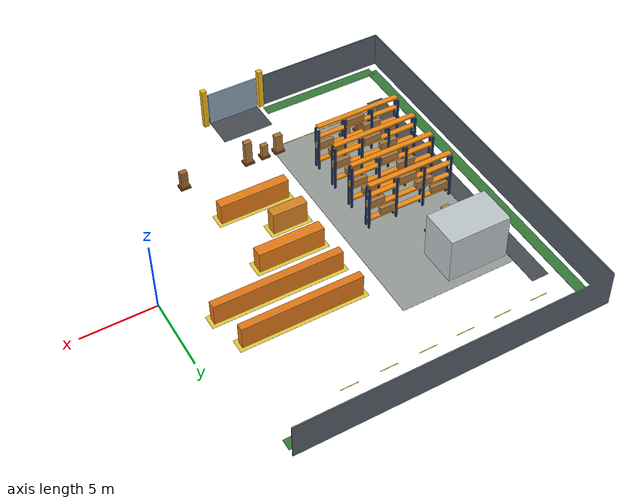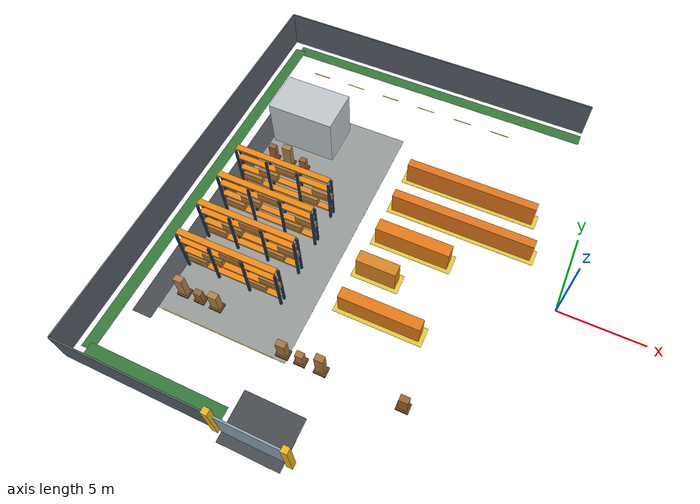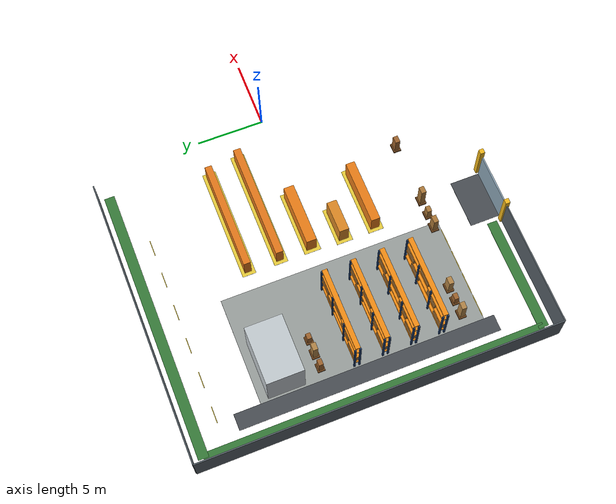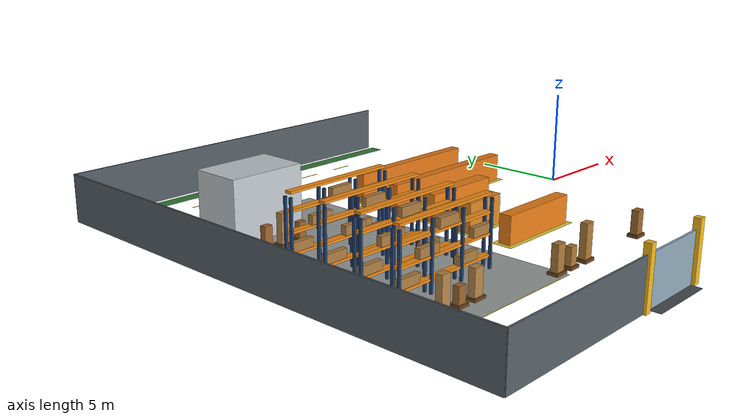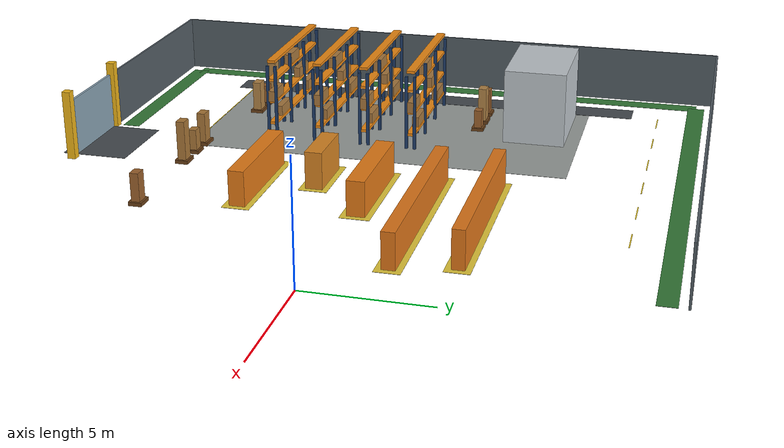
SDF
<sdf version="1.7">
 <world name="crtt_layout_demo">
  <include><uri>model://sun</uri></include>
  <model name="west_loading">
   <static>true</static>
   <pose>-16.8 -0.6 0.012 0 0 0</pose>
   <link name="marking">
    <visual name="visual">
     <geometry><box><size>9.0 16.5 0.012</size></box></geometry>
     <material><ambient>0.60 0.62 0.61 1</ambient><diffuse>0.60 0.62 0.61 1</diffuse></material>
    </visual>
   </link>
  </model>
  <model name="west_perimeter_path">
   <static>true</static>
   <pose>-20.849999999999998 0.0 0.025 0 0 0</pose>
   <link name="marking">
    <visual name="visual">
     <geometry><box><size>1.2 19.2 0.012</size></box></geometry>
     <material><ambient>0.28 0.30 0.32 1</ambient><diffuse>0.28 0.30 0.32 1</diffuse></material>
    </visual>
   </link>
  </model>
  <model name="green_north_west">
   <static>true</static>
   <pose>-12.075 12.45 0.036 0 0 0</pose>
   <link name="marking">
    <visual name="visual">
     <geometry><box><size>20.55 0.75 0.012</size></box></geometry>
     <material><ambient>0.21 0.48 0.22 1</ambient><diffuse>0.21 0.48 0.22 1</diffuse></material>
    </visual>
   </link>
  </model>
  <model name="green_west_edge">
   <static>true</static>
   <pose>-22.349999999999998 0.0 0.036 0 0 0</pose>
   <link name="marking">
    <visual name="visual">
     <geometry><box><size>0.75 24.9 0.012</size></box></geometry>
     <material><ambient>0.21 0.48 0.22 1</ambient><diffuse>0.21 0.48 0.22 1</diffuse></material>
    </visual>
   </link>
  </model>
  <model name="green_south_west">
   <static>true</static>
   <pose>-18.075 -12.45 0.036 0 0 0</pose>
   <link name="marking">
    <visual name="visual">
     <geometry><box><size>8.549999999999999 0.75 0.012</size></box></geometry>
     <material><ambient>0.21 0.48 0.22 1</ambient><diffuse>0.21 0.48 0.22 1</diffuse></material>
    </visual>
   </link>
  </model>
  <model name="south_loading_entry_road">
   <static>true</static>
   <pose>-11.7 -12.375 0.05 0 0 0</pose>
   <link name="marking">
    <visual name="visual">
     <geometry><box><size>3.5999999999999996 2.85 0.012</size></box></geometry>
     <material><ambient>0.28 0.30 0.32 1</ambient><diffuse>0.28 0.30 0.32 1</diffuse></material>
    </visual>
   </link>
  </model>
  <model name="north_fence_west">
   <static>true</static>
   <pose>-12.45 13.2 1.25 0 0 0</pose>
   <link name="link">
    <collision name="collision">
     <geometry><box><size>21.3 0.09 2.5</size></box></geometry>
     <surface><friction><ode><mu>0.9</mu><mu2>0.9</mu2></ode></friction></surface>
    </collision>
    <visual name="visual">
     <geometry><box><size>21.3 0.09 2.5</size></box></geometry>
     <material><ambient>0.33 0.37 0.40 1</ambient><diffuse>0.33 0.37 0.40 1</diffuse></material>
    </visual>
   </link>
  </model>
  <model name="south_fence_west">
   <static>true</static>
   <pose>-18.45 -13.2 1.25 0 0 0</pose>
   <link name="link">
    <collision name="collision">
     <geometry><box><size>9.299999999999999 0.09 2.5</size></box></geometry>
     <surface><friction><ode><mu>0.9</mu><mu2>0.9</mu2></ode></friction></surface>
    </collision>
    <visual name="visual">
     <geometry><box><size>9.299999999999999 0.09 2.5</size></box></geometry>
     <material><ambient>0.33 0.37 0.40 1</ambient><diffuse>0.33 0.37 0.40 1</diffuse></material>
    </visual>
   </link>
  </model>
  <model name="west_fence">
   <static>true</static>
   <pose>-23.099999999999998 0.0 1.25 0 0 0</pose>
   <link name="link">
    <collision name="collision">
     <geometry><box><size>0.09 26.4 2.5</size></box></geometry>
     <surface><friction><ode><mu>0.9</mu><mu2>0.9</mu2></ode></friction></surface>
    </collision>
    <visual name="visual">
     <geometry><box><size>0.09 26.4 2.5</size></box></geometry>
     <material><ambient>0.33 0.37 0.40 1</ambient><diffuse>0.33 0.37 0.40 1</diffuse></material>
    </visual>
   </link>
  </model>
  <model name="loading_office">
   <static>true</static>
   <pose>-18.0 5.7 1.65 0 0 0</pose>
   <link name="link">
    <collision name="collision">
     <geometry><box><size>4.2 2.6999999999999997 3.3</size></box></geometry>
     <surface><friction><ode><mu>0.9</mu><mu2>0.9</mu2></ode></friction></surface>
    </collision>
    <visual name="visual">
     <geometry><box><size>4.2 2.6999999999999997 3.3</size></box></geometry>
     <material><ambient>0.76 0.79 0.81 1</ambient><diffuse>0.76 0.79 0.81 1</diffuse></material>
    </visual>
   </link>
  </model>
  <model name="west_rack_1">
   <static>true</static>
   <pose>-17.099999999999998 -5.7 0 0 0 0</pose>
   <link name="rack">
    <collision name="rack_footprint">
     <pose>0 0 1.65 0 0 0</pose>
     <geometry><box><size>6.0 0.36 3.3</size></box></geometry>
    </collision>
    <visual name="upright_0_0">
     <pose>-3.0 -0.18 1.65 0 0 0</pose>
     <geometry><box><size>0.12 0.12 3.3</size></box></geometry>
     <material><ambient>0.12 0.24 0.42 1</ambient><diffuse>0.12 0.24 0.42 1</diffuse></material>
    </visual>
    <visual name="upright_0_1">
     <pose>-3.0 0.18 1.65 0 0 0</pose>
     <geometry><box><size>0.12 0.12 3.3</size></box></geometry>
     <material><ambient>0.12 0.24 0.42 1</ambient><diffuse>0.12 0.24 0.42 1</diffuse></material>
    </visual>
    <visual name="upright_1_0">
     <pose>-1.0 -0.18 1.65 0 0 0</pose>
     <geometry><box><size>0.12 0.12 3.3</size></box></geometry>
     <material><ambient>0.12 0.24 0.42 1</ambient><diffuse>0.12 0.24 0.42 1</diffuse></material>
    </visual>
    <visual name="upright_1_1">
     <pose>-1.0 0.18 1.65 0 0 0</pose>
     <geometry><box><size>0.12 0.12 3.3</size></box></geometry>
     <material><ambient>0.12 0.24 0.42 1</ambient><diffuse>0.12 0.24 0.42 1</diffuse></material>
    </visual>
    <visual name="upright_2_0">
     <pose>1.0 -0.18 1.65 0 0 0</pose>
     <geometry><box><size>0.12 0.12 3.3</size></box></geometry>
     <material><ambient>0.12 0.24 0.42 1</ambient><diffuse>0.12 0.24 0.42 1</diffuse></material>
    </visual>
    <visual name="upright_2_1">
     <pose>1.0 0.18 1.65 0 0 0</pose>
     <geometry><box><size>0.12 0.12 3.3</size></box></geometry>
     <material><ambient>0.12 0.24 0.42 1</ambient><diffuse>0.12 0.24 0.42 1</diffuse></material>
    </visual>
    <visual name="upright_3_0">
     <pose>3.0 -0.18 1.65 0 0 0</pose>
     <geometry><box><size>0.12 0.12 3.3</size></box></geometry>
     <material><ambient>0.12 0.24 0.42 1</ambient><diffuse>0.12 0.24 0.42 1</diffuse></material>
    </visual>
    <visual name="upright_3_1">
     <pose>3.0 0.18 1.65 0 0 0</pose>
     <geometry><box><size>0.12 0.12 3.3</size></box></geometry>
     <material><ambient>0.12 0.24 0.42 1</ambient><diffuse>0.12 0.24 0.42 1</diffuse></material>
    </visual>
    <visual name="beam_0">
     <pose>0 0 0.65 0 0 0</pose>
     <geometry><box><size>6.0 0.36 0.12</size></box></geometry>
     <material><ambient>0.95 0.55 0.08 1</ambient><diffuse>0.95 0.55 0.08 1</diffuse></material>
    </visual>
    <visual name="beam_1">
     <pose>0 0 1.65 0 0 0</pose>
     <geometry><box><size>6.0 0.36 0.12</size></box></geometry>
     <material><ambient>0.95 0.55 0.08 1</ambient><diffuse>0.95 0.55 0.08 1</diffuse></material>
    </visual>
    <visual name="beam_2">
     <pose>0 0 2.65 0 0 0</pose>
     <geometry><box><size>6.0 0.36 0.12</size></box></geometry>
     <material><ambient>0.95 0.55 0.08 1</ambient><diffuse>0.95 0.55 0.08 1</diffuse></material>
    </visual>
    <visual name="beam_3">
     <pose>0 0 3.5 0 0 0</pose>
     <geometry><box><size>6.0 0.36 0.12</size></box></geometry>
     <material><ambient>0.95 0.55 0.08 1</ambient><diffuse>0.95 0.55 0.08 1</diffuse></material>
    </visual>
    <visual name="load_0">
     <pose>-2.2800000000000002 0 0.92 0 0 0</pose>
     <geometry><box><size>1.25 0.2808 0.48</size></box></geometry>
     <material><ambient>0.67 0.48 0.25 1</ambient><diffuse>0.67 0.48 0.25 1</diffuse></material>
    </visual>
    <visual name="load_1">
     <pose>-1.08 0 1.92 0 0 0</pose>
     <geometry><box><size>1.25 0.2808 0.48</size></box></geometry>
     <material><ambient>0.67 0.48 0.25 1</ambient><diffuse>0.67 0.48 0.25 1</diffuse></material>
    </visual>
    <visual name="load_2">
     <pose>0.18 0 2.92 0 0 0</pose>
     <geometry><box><size>1.25 0.2808 0.48</size></box></geometry>
     <material><ambient>0.67 0.48 0.25 1</ambient><diffuse>0.67 0.48 0.25 1</diffuse></material>
    </visual>
    <visual name="load_3">
     <pose>1.5 0 0.92 0 0 0</pose>
     <geometry><box><size>1.25 0.2808 0.48</size></box></geometry>
     <material><ambient>0.67 0.48 0.25 1</ambient><diffuse>0.67 0.48 0.25 1</diffuse></material>
    </visual>
    <visual name="load_4">
     <pose>2.46 0 1.92 0 0 0</pose>
     <geometry><box><size>1.25 0.2808 0.48</size></box></geometry>
     <material><ambient>0.67 0.48 0.25 1</ambient><diffuse>0.67 0.48 0.25 1</diffuse></material>
    </visual>
   </link>
  </model>
  <model name="west_rack_2">
   <static>true</static>
   <pose>-17.099999999999998 -3.5999999999999996 0 0 0 0</pose>
   <link name="rack">
    <collision name="rack_footprint">
     <pose>0 0 1.65 0 0 0</pose>
     <geometry><box><size>6.0 0.36 3.3</size></box></geometry>
    </collision>
    <visual name="upright_0_0">
     <pose>-3.0 -0.18 1.65 0 0 0</pose>
     <geometry><box><size>0.12 0.12 3.3</size></box></geometry>
     <material><ambient>0.12 0.24 0.42 1</ambient><diffuse>0.12 0.24 0.42 1</diffuse></material>
    </visual>
    <visual name="upright_0_1">
     <pose>-3.0 0.18 1.65 0 0 0</pose>
     <geometry><box><size>0.12 0.12 3.3</size></box></geometry>
     <material><ambient>0.12 0.24 0.42 1</ambient><diffuse>0.12 0.24 0.42 1</diffuse></material>
    </visual>
    <visual name="upright_1_0">
     <pose>-1.0 -0.18 1.65 0 0 0</pose>
     <geometry><box><size>0.12 0.12 3.3</size></box></geometry>
     <material><ambient>0.12 0.24 0.42 1</ambient><diffuse>0.12 0.24 0.42 1</diffuse></material>
    </visual>
    <visual name="upright_1_1">
     <pose>-1.0 0.18 1.65 0 0 0</pose>
     <geometry><box><size>0.12 0.12 3.3</size></box></geometry>
     <material><ambient>0.12 0.24 0.42 1</ambient><diffuse>0.12 0.24 0.42 1</diffuse></material>
    </visual>
    <visual name="upright_2_0">
     <pose>1.0 -0.18 1.65 0 0 0</pose>
     <geometry><box><size>0.12 0.12 3.3</size></box></geometry>
     <material><ambient>0.12 0.24 0.42 1</ambient><diffuse>0.12 0.24 0.42 1</diffuse></material>
    </visual>
    <visual name="upright_2_1">
     <pose>1.0 0.18 1.65 0 0 0</pose>
     <geometry><box><size>0.12 0.12 3.3</size></box></geometry>
     <material><ambient>0.12 0.24 0.42 1</ambient><diffuse>0.12 0.24 0.42 1</diffuse></material>
    </visual>
    <visual name="upright_3_0">
     <pose>3.0 -0.18 1.65 0 0 0</pose>
     <geometry><box><size>0.12 0.12 3.3</size></box></geometry>
     <material><ambient>0.12 0.24 0.42 1</ambient><diffuse>0.12 0.24 0.42 1</diffuse></material>
    </visual>
    <visual name="upright_3_1">
     <pose>3.0 0.18 1.65 0 0 0</pose>
     <geometry><box><size>0.12 0.12 3.3</size></box></geometry>
     <material><ambient>0.12 0.24 0.42 1</ambient><diffuse>0.12 0.24 0.42 1</diffuse></material>
    </visual>
    <visual name="beam_0">
     <pose>0 0 0.65 0 0 0</pose>
     <geometry><box><size>6.0 0.36 0.12</size></box></geometry>
     <material><ambient>0.95 0.55 0.08 1</ambient><diffuse>0.95 0.55 0.08 1</diffuse></material>
    </visual>
    <visual name="beam_1">
     <pose>0 0 1.65 0 0 0</pose>
     <geometry><box><size>6.0 0.36 0.12</size></box></geometry>
     <material><ambient>0.95 0.55 0.08 1</ambient><diffuse>0.95 0.55 0.08 1</diffuse></material>
    </visual>
    <visual name="beam_2">
     <pose>0 0 2.65 0 0 0</pose>
     <geometry><box><size>6.0 0.36 0.12</size></box></geometry>
     <material><ambient>0.95 0.55 0.08 1</ambient><diffuse>0.95 0.55 0.08 1</diffuse></material>
    </visual>
    <visual name="beam_3">
     <pose>0 0 3.5 0 0 0</pose>
     <geometry><box><size>6.0 0.36 0.12</size></box></geometry>
     <material><ambient>0.95 0.55 0.08 1</ambient><diffuse>0.95 0.55 0.08 1</diffuse></material>
    </visual>
    <visual name="load_0">
     <pose>-2.2800000000000002 0 0.92 0 0 0</pose>
     <geometry><box><size>1.25 0.2808 0.48</size></box></geometry>
     <material><ambient>0.67 0.48 0.25 1</ambient><diffuse>0.67 0.48 0.25 1</diffuse></material>
    </visual>
    <visual name="load_1">
     <pose>-1.08 0 1.92 0 0 0</pose>
     <geometry><box><size>1.25 0.2808 0.48</size></box></geometry>
     <material><ambient>0.67 0.48 0.25 1</ambient><diffuse>0.67 0.48 0.25 1</diffuse></material>
    </visual>
    <visual name="load_2">
     <pose>0.18 0 2.92 0 0 0</pose>
     <geometry><box><size>1.25 0.2808 0.48</size></box></geometry>
     <material><ambient>0.67 0.48 0.25 1</ambient><diffuse>0.67 0.48 0.25 1</diffuse></material>
    </visual>
    <visual name="load_3">
     <pose>1.5 0 0.92 0 0 0</pose>
     <geometry><box><size>1.25 0.2808 0.48</size></box></geometry>
     <material><ambient>0.67 0.48 0.25 1</ambient><diffuse>0.67 0.48 0.25 1</diffuse></material>
    </visual>
    <visual name="load_4">
     <pose>2.46 0 1.92 0 0 0</pose>
     <geometry><box><size>1.25 0.2808 0.48</size></box></geometry>
     <material><ambient>0.67 0.48 0.25 1</ambient><diffuse>0.67 0.48 0.25 1</diffuse></material>
    </visual>
   </link>
  </model>
  <model name="west_rack_3">
   <static>true</static>
   <pose>-17.099999999999998 -1.5 0 0 0 0</pose>
   <link name="rack">
    <collision name="rack_footprint">
     <pose>0 0 1.65 0 0 0</pose>
     <geometry><box><size>6.0 0.36 3.3</size></box></geometry>
    </collision>
    <visual name="upright_0_0">
     <pose>-3.0 -0.18 1.65 0 0 0</pose>
     <geometry><box><size>0.12 0.12 3.3</size></box></geometry>
     <material><ambient>0.12 0.24 0.42 1</ambient><diffuse>0.12 0.24 0.42 1</diffuse></material>
    </visual>
    <visual name="upright_0_1">
     <pose>-3.0 0.18 1.65 0 0 0</pose>
     <geometry><box><size>0.12 0.12 3.3</size></box></geometry>
     <material><ambient>0.12 0.24 0.42 1</ambient><diffuse>0.12 0.24 0.42 1</diffuse></material>
    </visual>
    <visual name="upright_1_0">
     <pose>-1.0 -0.18 1.65 0 0 0</pose>
     <geometry><box><size>0.12 0.12 3.3</size></box></geometry>
     <material><ambient>0.12 0.24 0.42 1</ambient><diffuse>0.12 0.24 0.42 1</diffuse></material>
    </visual>
    <visual name="upright_1_1">
     <pose>-1.0 0.18 1.65 0 0 0</pose>
     <geometry><box><size>0.12 0.12 3.3</size></box></geometry>
     <material><ambient>0.12 0.24 0.42 1</ambient><diffuse>0.12 0.24 0.42 1</diffuse></material>
    </visual>
    <visual name="upright_2_0">
     <pose>1.0 -0.18 1.65 0 0 0</pose>
     <geometry><box><size>0.12 0.12 3.3</size></box></geometry>
     <material><ambient>0.12 0.24 0.42 1</ambient><diffuse>0.12 0.24 0.42 1</diffuse></material>
    </visual>
    <visual name="upright_2_1">
     <pose>1.0 0.18 1.65 0 0 0</pose>
     <geometry><box><size>0.12 0.12 3.3</size></box></geometry>
     <material><ambient>0.12 0.24 0.42 1</ambient><diffuse>0.12 0.24 0.42 1</diffuse></material>
    </visual>
    <visual name="upright_3_0">
     <pose>3.0 -0.18 1.65 0 0 0</pose>
     <geometry><box><size>0.12 0.12 3.3</size></box></geometry>
     <material><ambient>0.12 0.24 0.42 1</ambient><diffuse>0.12 0.24 0.42 1</diffuse></material>
    </visual>
    <visual name="upright_3_1">
     <pose>3.0 0.18 1.65 0 0 0</pose>
     <geometry><box><size>0.12 0.12 3.3</size></box></geometry>
     <material><ambient>0.12 0.24 0.42 1</ambient><diffuse>0.12 0.24 0.42 1</diffuse></material>
    </visual>
    <visual name="beam_0">
     <pose>0 0 0.65 0 0 0</pose>
     <geometry><box><size>6.0 0.36 0.12</size></box></geometry>
     <material><ambient>0.95 0.55 0.08 1</ambient><diffuse>0.95 0.55 0.08 1</diffuse></material>
    </visual>
    <visual name="beam_1">
     <pose>0 0 1.65 0 0 0</pose>
     <geometry><box><size>6.0 0.36 0.12</size></box></geometry>
     <material><ambient>0.95 0.55 0.08 1</ambient><diffuse>0.95 0.55 0.08 1</diffuse></material>
    </visual>
    <visual name="beam_2">
     <pose>0 0 2.65 0 0 0</pose>
     <geometry><box><size>6.0 0.36 0.12</size></box></geometry>
     <material><ambient>0.95 0.55 0.08 1</ambient><diffuse>0.95 0.55 0.08 1</diffuse></material>
    </visual>
    <visual name="beam_3">
     <pose>0 0 3.5 0 0 0</pose>
     <geometry><box><size>6.0 0.36 0.12</size></box></geometry>
     <material><ambient>0.95 0.55 0.08 1</ambient><diffuse>0.95 0.55 0.08 1</diffuse></material>
    </visual>
    <visual name="load_0">
     <pose>-2.2800000000000002 0 0.92 0 0 0</pose>
     <geometry><box><size>1.25 0.2808 0.48</size></box></geometry>
     <material><ambient>0.67 0.48 0.25 1</ambient><diffuse>0.67 0.48 0.25 1</diffuse></material>
    </visual>
    <visual name="load_1">
     <pose>-1.08 0 1.92 0 0 0</pose>
     <geometry><box><size>1.25 0.2808 0.48</size></box></geometry>
     <material><ambient>0.67 0.48 0.25 1</ambient><diffuse>0.67 0.48 0.25 1</diffuse></material>
    </visual>
    <visual name="load_2">
     <pose>0.18 0 2.92 0 0 0</pose>
     <geometry><box><size>1.25 0.2808 0.48</size></box></geometry>
     <material><ambient>0.67 0.48 0.25 1</ambient><diffuse>0.67 0.48 0.25 1</diffuse></material>
    </visual>
    <visual name="load_3">
     <pose>1.5 0 0.92 0 0 0</pose>
     <geometry><box><size>1.25 0.2808 0.48</size></box></geometry>
     <material><ambient>0.67 0.48 0.25 1</ambient><diffuse>0.67 0.48 0.25 1</diffuse></material>
    </visual>
    <visual name="load_4">
     <pose>2.46 0 1.92 0 0 0</pose>
     <geometry><box><size>1.25 0.2808 0.48</size></box></geometry>
     <material><ambient>0.67 0.48 0.25 1</ambient><diffuse>0.67 0.48 0.25 1</diffuse></material>
    </visual>
   </link>
  </model>
  <model name="west_rack_4">
   <static>true</static>
   <pose>-17.099999999999998 0.6 0 0 0 0</pose>
   <link name="rack">
    <collision name="rack_footprint">
     <pose>0 0 1.65 0 0 0</pose>
     <geometry><box><size>6.0 0.36 3.3</size></box></geometry>
    </collision>
    <visual name="upright_0_0">
     <pose>-3.0 -0.18 1.65 0 0 0</pose>
     <geometry><box><size>0.12 0.12 3.3</size></box></geometry>
     <material><ambient>0.12 0.24 0.42 1</ambient><diffuse>0.12 0.24 0.42 1</diffuse></material>
    </visual>
    <visual name="upright_0_1">
     <pose>-3.0 0.18 1.65 0 0 0</pose>
     <geometry><box><size>0.12 0.12 3.3</size></box></geometry>
     <material><ambient>0.12 0.24 0.42 1</ambient><diffuse>0.12 0.24 0.42 1</diffuse></material>
    </visual>
    <visual name="upright_1_0">
     <pose>-1.0 -0.18 1.65 0 0 0</pose>
     <geometry><box><size>0.12 0.12 3.3</size></box></geometry>
     <material><ambient>0.12 0.24 0.42 1</ambient><diffuse>0.12 0.24 0.42 1</diffuse></material>
    </visual>
    <visual name="upright_1_1">
     <pose>-1.0 0.18 1.65 0 0 0</pose>
     <geometry><box><size>0.12 0.12 3.3</size></box></geometry>
     <material><ambient>0.12 0.24 0.42 1</ambient><diffuse>0.12 0.24 0.42 1</diffuse></material>
    </visual>
    <visual name="upright_2_0">
     <pose>1.0 -0.18 1.65 0 0 0</pose>
     <geometry><box><size>0.12 0.12 3.3</size></box></geometry>
     <material><ambient>0.12 0.24 0.42 1</ambient><diffuse>0.12 0.24 0.42 1</diffuse></material>
    </visual>
    <visual name="upright_2_1">
     <pose>1.0 0.18 1.65 0 0 0</pose>
     <geometry><box><size>0.12 0.12 3.3</size></box></geometry>
     <material><ambient>0.12 0.24 0.42 1</ambient><diffuse>0.12 0.24 0.42 1</diffuse></material>
    </visual>
    <visual name="upright_3_0">
     <pose>3.0 -0.18 1.65 0 0 0</pose>
     <geometry><box><size>0.12 0.12 3.3</size></box></geometry>
     <material><ambient>0.12 0.24 0.42 1</ambient><diffuse>0.12 0.24 0.42 1</diffuse></material>
    </visual>
    <visual name="upright_3_1">
     <pose>3.0 0.18 1.65 0 0 0</pose>
     <geometry><box><size>0.12 0.12 3.3</size></box></geometry>
     <material><ambient>0.12 0.24 0.42 1</ambient><diffuse>0.12 0.24 0.42 1</diffuse></material>
    </visual>
    <visual name="beam_0">
     <pose>0 0 0.65 0 0 0</pose>
     <geometry><box><size>6.0 0.36 0.12</size></box></geometry>
     <material><ambient>0.95 0.55 0.08 1</ambient><diffuse>0.95 0.55 0.08 1</diffuse></material>
    </visual>
    <visual name="beam_1">
     <pose>0 0 1.65 0 0 0</pose>
     <geometry><box><size>6.0 0.36 0.12</size></box></geometry>
     <material><ambient>0.95 0.55 0.08 1</ambient><diffuse>0.95 0.55 0.08 1</diffuse></material>
    </visual>
    <visual name="beam_2">
     <pose>0 0 2.65 0 0 0</pose>
     <geometry><box><size>6.0 0.36 0.12</size></box></geometry>
     <material><ambient>0.95 0.55 0.08 1</ambient><diffuse>0.95 0.55 0.08 1</diffuse></material>
    </visual>
    <visual name="beam_3">
     <pose>0 0 3.5 0 0 0</pose>
     <geometry><box><size>6.0 0.36 0.12</size></box></geometry>
     <material><ambient>0.95 0.55 0.08 1</ambient><diffuse>0.95 0.55 0.08 1</diffuse></material>
    </visual>
    <visual name="load_0">
     <pose>-2.2800000000000002 0 0.92 0 0 0</pose>
     <geometry><box><size>1.25 0.2808 0.48</size></box></geometry>
     <material><ambient>0.67 0.48 0.25 1</ambient><diffuse>0.67 0.48 0.25 1</diffuse></material>
    </visual>
    <visual name="load_1">
     <pose>-1.08 0 1.92 0 0 0</pose>
     <geometry><box><size>1.25 0.2808 0.48</size></box></geometry>
     <material><ambient>0.67 0.48 0.25 1</ambient><diffuse>0.67 0.48 0.25 1</diffuse></material>
    </visual>
    <visual name="load_2">
     <pose>0.18 0 2.92 0 0 0</pose>
     <geometry><box><size>1.25 0.2808 0.48</size></box></geometry>
     <material><ambient>0.67 0.48 0.25 1</ambient><diffuse>0.67 0.48 0.25 1</diffuse></material>
    </visual>
    <visual name="load_3">
     <pose>1.5 0 0.92 0 0 0</pose>
     <geometry><box><size>1.25 0.2808 0.48</size></box></geometry>
     <material><ambient>0.67 0.48 0.25 1</ambient><diffuse>0.67 0.48 0.25 1</diffuse></material>
    </visual>
    <visual name="load_4">
     <pose>2.46 0 1.92 0 0 0</pose>
     <geometry><box><size>1.25 0.2808 0.48</size></box></geometry>
     <material><ambient>0.67 0.48 0.25 1</ambient><diffuse>0.67 0.48 0.25 1</diffuse></material>
    </visual>
   </link>
  </model>
  <model name="south_gate_west_post">
   <static>true</static>
   <pose>-13.799999999999999 -13.2 1.5 0 0 0</pose>
   <link name="link">
    <collision name="collision">
     <geometry><box><size>0.35 0.35 3.0</size></box></geometry>
     <surface><friction><ode><mu>0.9</mu><mu2>0.9</mu2></ode></friction></surface>
    </collision>
    <visual name="visual">
     <geometry><box><size>0.35 0.35 3.0</size></box></geometry>
     <material><ambient>0.95 0.72 0.10 1</ambient><diffuse>0.95 0.72 0.10 1</diffuse></material>
    </visual>
   </link>
  </model>
  <model name="south_gate_east_post">
   <static>true</static>
   <pose>-9.6 -13.2 1.5 0 0 0</pose>
   <link name="link">
    <collision name="collision">
     <geometry><box><size>0.35 0.35 3.0</size></box></geometry>
     <surface><friction><ode><mu>0.9</mu><mu2>0.9</mu2></ode></friction></surface>
    </collision>
    <visual name="visual">
     <geometry><box><size>0.35 0.35 3.0</size></box></geometry>
     <material><ambient>0.95 0.72 0.10 1</ambient><diffuse>0.95 0.72 0.10 1</diffuse></material>
    </visual>
   </link>
  </model>
  <model name="crtt_south_gate">
   <static>false</static>
   <pose>-11.7 -13.2 1.25 0 0 0</pose>
   <link name="panel">
    <kinematic>true</kinematic>
    <gravity>false</gravity>
    <inertial>
     <mass>100.0</mass>
     <inertia><ixx>100.0</ixx><iyy>100.0</iyy><izz>100.0</izz><ixy>0</ixy><ixz>0</ixz><iyz>0</iyz></inertia>
    </inertial>
    <collision name="collision">
     <geometry><box><size>3.5999999999999996 0.105 2.5</size></box></geometry>
    </collision>
    <visual name="visual">
     <geometry><box><size>3.5999999999999996 0.105 2.5</size></box></geometry>
     <material><ambient>0.55 0.65 0.72 1</ambient><diffuse>0.55 0.65 0.72 1</diffuse></material>
    </visual>
   </link>
  </model>
  <model name="process_long_a_pad">
   <static>true</static>
   <pose>-6.8999999999999995 5.1 0.012 0 0 0</pose>
   <link name="marking">
    <visual name="visual">
     <geometry><box><size>8.58 0.9899999999999999 0.012</size></box></geometry>
     <material><ambient>0.91 0.80 0.23 1</ambient><diffuse>0.91 0.80 0.23 1</diffuse></material>
    </visual>
   </link>
  </model>
  <model name="process_long_a">
   <static>true</static>
   <pose>-6.8999999999999995 5.1 0.8 0 0 0</pose>
   <link name="link">
    <collision name="collision">
     <geometry><box><size>8.1 0.51 1.6</size></box></geometry>
     <surface><friction><ode><mu>0.9</mu><mu2>0.9</mu2></ode></friction></surface>
    </collision>
    <visual name="visual">
     <geometry><box><size>8.1 0.51 1.6</size></box></geometry>
     <material><ambient>0.89 0.47 0.10 1</ambient><diffuse>0.89 0.47 0.10 1</diffuse></material>
    </visual>
   </link>
  </model>
  <model name="process_long_b_pad">
   <static>true</static>
   <pose>-6.6 2.6999999999999997 0.012 0 0 0</pose>
   <link name="marking">
    <visual name="visual">
     <geometry><box><size>9.18 1.02 0.012</size></box></geometry>
     <material><ambient>0.91 0.80 0.23 1</ambient><diffuse>0.91 0.80 0.23 1</diffuse></material>
    </visual>
   </link>
  </model>
  <model name="process_long_b">
   <static>true</static>
   <pose>-6.6 2.6999999999999997 0.75 0 0 0</pose>
   <link name="link">
    <collision name="collision">
     <geometry><box><size>8.7 0.54 1.5</size></box></geometry>
     <surface><friction><ode><mu>0.9</mu><mu2>0.9</mu2></ode></friction></surface>
    </collision>
    <visual name="visual">
     <geometry><box><size>8.7 0.54 1.5</size></box></geometry>
     <material><ambient>0.89 0.47 0.10 1</ambient><diffuse>0.89 0.47 0.10 1</diffuse></material>
    </visual>
   </link>
  </model>
  <model name="process_medium_b_pad">
   <static>true</static>
   <pose>-8.7 0.3 0.012 0 0 0</pose>
   <link name="marking">
    <visual name="visual">
     <geometry><box><size>4.98 1.2299999999999998 0.012</size></box></geometry>
     <material><ambient>0.91 0.80 0.23 1</ambient><diffuse>0.91 0.80 0.23 1</diffuse></material>
    </visual>
   </link>
  </model>
  <model name="process_medium_b">
   <static>true</static>
   <pose>-8.7 0.3 0.75 0 0 0</pose>
   <link name="link">
    <collision name="collision">
     <geometry><box><size>4.5 0.75 1.5</size></box></geometry>
     <surface><friction><ode><mu>0.9</mu><mu2>0.9</mu2></ode></friction></surface>
    </collision>
    <visual name="visual">
     <geometry><box><size>4.5 0.75 1.5</size></box></geometry>
     <material><ambient>0.91 0.49 0.09 1</ambient><diffuse>0.91 0.49 0.09 1</diffuse></material>
    </visual>
   </link>
  </model>
  <model name="process_short_b_pad">
   <static>true</static>
   <pose>-9.9 -2.1 0.012 0 0 0</pose>
   <link name="marking">
    <visual name="visual">
     <geometry><box><size>2.88 1.2 0.012</size></box></geometry>
     <material><ambient>0.91 0.80 0.23 1</ambient><diffuse>0.91 0.80 0.23 1</diffuse></material>
    </visual>
   </link>
  </model>
  <model name="process_short_b">
   <static>true</static>
   <pose>-9.9 -2.1 0.8 0 0 0</pose>
   <link name="link">
    <collision name="collision">
     <geometry><box><size>2.4 0.72 1.6</size></box></geometry>
     <surface><friction><ode><mu>0.9</mu><mu2>0.9</mu2></ode></friction></surface>
    </collision>
    <visual name="visual">
     <geometry><box><size>2.4 0.72 1.6</size></box></geometry>
     <material><ambient>0.86 0.53 0.14 1</ambient><diffuse>0.86 0.53 0.14 1</diffuse></material>
    </visual>
   </link>
  </model>
  <model name="process_medium_c_pad">
   <static>true</static>
   <pose>-8.7 -4.5 0.012 0 0 0</pose>
   <link name="marking">
    <visual name="visual">
     <geometry><box><size>5.28 1.1400000000000001 0.012</size></box></geometry>
     <material><ambient>0.91 0.80 0.23 1</ambient><diffuse>0.91 0.80 0.23 1</diffuse></material>
    </visual>
   </link>
  </model>
  <model name="process_medium_c">
   <static>true</static>
   <pose>-8.7 -4.5 0.75 0 0 0</pose>
   <link name="link">
    <collision name="collision">
     <geometry><box><size>4.8 0.66 1.5</size></box></geometry>
     <surface><friction><ode><mu>0.9</mu><mu2>0.9</mu2></ode></friction></surface>
    </collision>
    <visual name="visual">
     <geometry><box><size>4.8 0.66 1.5</size></box></geometry>
     <material><ambient>0.91 0.49 0.09 1</ambient><diffuse>0.91 0.49 0.09 1</diffuse></material>
    </visual>
   </link>
  </model>
  <model name="floor_load_1">
   <static>true</static>
   <pose>-19.349999999999998 3.0 0 0 0 0</pose>
   <link name="load">
    <collision name="collision">
     <pose>0 0 0.63 0 0 0</pose>
     <geometry><box><size>0.6499999999999999 0.53 1.26</size></box></geometry>
    </collision>
    <visual name="wood_pallet">
     <pose>0 0 0.08 0 0 0</pose>
     <geometry><box><size>0.6499999999999999 0.53 0.16</size></box></geometry>
     <material><ambient>0.43 0.26 0.10 1</ambient><diffuse>0.43 0.26 0.10 1</diffuse></material>
    </visual>
    <visual name="cargo">
     <pose>0 0 0.7100000000000001 0 0 0</pose>
     <geometry><box><size>0.44999999999999996 0.33 1.1</size></box></geometry>
     <material><ambient>0.62 0.39 0.18 1</ambient><diffuse>0.62 0.39 0.18 1</diffuse></material>
    </visual>
   </link>
  </model>
  <model name="floor_load_2">
   <static>true</static>
   <pose>-18.3 3.0 0 0 0 0</pose>
   <link name="load">
    <collision name="collision">
     <pose>0 0 0.83 0 0 0</pose>
     <geometry><box><size>0.74 0.56 1.66</size></box></geometry>
    </collision>
    <visual name="wood_pallet">
     <pose>0 0 0.08 0 0 0</pose>
     <geometry><box><size>0.74 0.56 0.16</size></box></geometry>
     <material><ambient>0.43 0.26 0.10 1</ambient><diffuse>0.43 0.26 0.10 1</diffuse></material>
    </visual>
    <visual name="cargo">
     <pose>0 0 0.91 0 0 0</pose>
     <geometry><box><size>0.54 0.36 1.5</size></box></geometry>
     <material><ambient>0.70 0.52 0.28 1</ambient><diffuse>0.70 0.52 0.28 1</diffuse></material>
    </visual>
   </link>
  </model>
  <model name="floor_load_3">
   <static>true</static>
   <pose>-17.25 3.0 0 0 0 0</pose>
   <link name="load">
    <collision name="collision">
     <pose>0 0 0.48000000000000004 0 0 0</pose>
     <geometry><box><size>0.62 0.53 0.9600000000000001</size></box></geometry>
    </collision>
    <visual name="wood_pallet">
     <pose>0 0 0.08 0 0 0</pose>
     <geometry><box><size>0.62 0.53 0.16</size></box></geometry>
     <material><ambient>0.43 0.26 0.10 1</ambient><diffuse>0.43 0.26 0.10 1</diffuse></material>
    </visual>
    <visual name="cargo">
     <pose>0 0 0.56 0 0 0</pose>
     <geometry><box><size>0.42 0.33 0.8</size></box></geometry>
     <material><ambient>0.62 0.39 0.18 1</ambient><diffuse>0.62 0.39 0.18 1</diffuse></material>
    </visual>
   </link>
  </model>
  <model name="floor_load_4">
   <static>true</static>
   <pose>-19.349999999999998 -7.5 0 0 0 0</pose>
   <link name="load">
    <collision name="collision">
     <pose>0 0 0.88 0 0 0</pose>
     <geometry><box><size>0.71 0.56 1.76</size></box></geometry>
    </collision>
    <visual name="wood_pallet">
     <pose>0 0 0.08 0 0 0</pose>
     <geometry><box><size>0.71 0.56 0.16</size></box></geometry>
     <material><ambient>0.43 0.26 0.10 1</ambient><diffuse>0.43 0.26 0.10 1</diffuse></material>
    </visual>
    <visual name="cargo">
     <pose>0 0 0.9600000000000001 0 0 0</pose>
     <geometry><box><size>0.51 0.36 1.6</size></box></geometry>
     <material><ambient>0.70 0.52 0.28 1</ambient><diffuse>0.70 0.52 0.28 1</diffuse></material>
    </visual>
   </link>
  </model>
  <model name="floor_load_5">
   <static>true</static>
   <pose>-18.3 -7.5 0 0 0 0</pose>
   <link name="load">
    <collision name="collision">
     <pose>0 0 0.48000000000000004 0 0 0</pose>
     <geometry><box><size>0.6499999999999999 0.53 0.9600000000000001</size></box></geometry>
    </collision>
    <visual name="wood_pallet">
     <pose>0 0 0.08 0 0 0</pose>
     <geometry><box><size>0.6499999999999999 0.53 0.16</size></box></geometry>
     <material><ambient>0.43 0.26 0.10 1</ambient><diffuse>0.43 0.26 0.10 1</diffuse></material>
    </visual>
    <visual name="cargo">
     <pose>0 0 0.56 0 0 0</pose>
     <geometry><box><size>0.44999999999999996 0.33 0.8</size></box></geometry>
     <material><ambient>0.62 0.39 0.18 1</ambient><diffuse>0.62 0.39 0.18 1</diffuse></material>
    </visual>
   </link>
  </model>
  <model name="floor_load_6">
   <static>true</static>
   <pose>-17.25 -7.5 0 0 0 0</pose>
   <link name="load">
    <collision name="collision">
     <pose>0 0 0.73 0 0 0</pose>
     <geometry><box><size>0.74 0.56 1.46</size></box></geometry>
    </collision>
    <visual name="wood_pallet">
     <pose>0 0 0.08 0 0 0</pose>
     <geometry><box><size>0.74 0.56 0.16</size></box></geometry>
     <material><ambient>0.43 0.26 0.10 1</ambient><diffuse>0.43 0.26 0.10 1</diffuse></material>
    </visual>
    <visual name="cargo">
     <pose>0 0 0.81 0 0 0</pose>
     <geometry><box><size>0.54 0.36 1.3</size></box></geometry>
     <material><ambient>0.70 0.52 0.28 1</ambient><diffuse>0.70 0.52 0.28 1</diffuse></material>
    </visual>
   </link>
  </model>
  <model name="floor_load_7">
   <static>true</static>
   <pose>-12.6 -8.4 0 0 0 0</pose>
   <link name="load">
    <collision name="collision">
     <pose>0 0 0.73 0 0 0</pose>
     <geometry><box><size>0.74 0.56 1.46</size></box></geometry>
    </collision>
    <visual name="wood_pallet">
     <pose>0 0 0.08 0 0 0</pose>
     <geometry><box><size>0.74 0.56 0.16</size></box></geometry>
     <material><ambient>0.43 0.26 0.10 1</ambient><diffuse>0.43 0.26 0.10 1</diffuse></material>
    </visual>
    <visual name="cargo">
     <pose>0 0 0.81 0 0 0</pose>
     <geometry><box><size>0.54 0.36 1.3</size></box></geometry>
     <material><ambient>0.67 0.47 0.22 1</ambient><diffuse>0.67 0.47 0.22 1</diffuse></material>
    </visual>
   </link>
  </model>
  <model name="floor_load_8">
   <static>true</static>
   <pose>-11.549999999999999 -8.4 0 0 0 0</pose>
   <link name="load">
    <collision name="collision">
     <pose>0 0 0.53 0 0 0</pose>
     <geometry><box><size>0.6499999999999999 0.53 1.06</size></box></geometry>
    </collision>
    <visual name="wood_pallet">
     <pose>0 0 0.08 0 0 0</pose>
     <geometry><box><size>0.6499999999999999 0.53 0.16</size></box></geometry>
     <material><ambient>0.43 0.26 0.10 1</ambient><diffuse>0.43 0.26 0.10 1</diffuse></material>
    </visual>
    <visual name="cargo">
     <pose>0 0 0.61 0 0 0</pose>
     <geometry><box><size>0.44999999999999996 0.33 0.9</size></box></geometry>
     <material><ambient>0.67 0.47 0.22 1</ambient><diffuse>0.67 0.47 0.22 1</diffuse></material>
    </visual>
   </link>
  </model>
  <model name="floor_load_9">
   <static>true</static>
   <pose>-10.35 -8.4 0 0 0 0</pose>
   <link name="load">
    <collision name="collision">
     <pose>0 0 0.9299999999999999 0 0 0</pose>
     <geometry><box><size>0.71 0.56 1.8599999999999999</size></box></geometry>
    </collision>
    <visual name="wood_pallet">
     <pose>0 0 0.08 0 0 0</pose>
     <geometry><box><size>0.71 0.56 0.16</size></box></geometry>
     <material><ambient>0.43 0.26 0.10 1</ambient><diffuse>0.43 0.26 0.10 1</diffuse></material>
    </visual>
    <visual name="cargo">
     <pose>0 0 1.01 0 0 0</pose>
     <geometry><box><size>0.51 0.36 1.7</size></box></geometry>
     <material><ambient>0.67 0.47 0.22 1</ambient><diffuse>0.67 0.47 0.22 1</diffuse></material>
    </visual>
   </link>
  </model>
  <model name="floor_load_10">
   <static>true</static>
   <pose>-5.7 -8.4 0 0 0 0</pose>
   <link name="load">
    <collision name="collision">
     <pose>0 0 0.6799999999999999 0 0 0</pose>
     <geometry><box><size>0.71 0.56 1.3599999999999999</size></box></geometry>
    </collision>
    <visual name="wood_pallet">
     <pose>0 0 0.08 0 0 0</pose>
     <geometry><box><size>0.71 0.56 0.16</size></box></geometry>
     <material><ambient>0.43 0.26 0.10 1</ambient><diffuse>0.43 0.26 0.10 1</diffuse></material>
    </visual>
    <visual name="cargo">
     <pose>0 0 0.76 0 0 0</pose>
     <geometry><box><size>0.51 0.36 1.2</size></box></geometry>
     <material><ambient>0.62 0.39 0.18 1</ambient><diffuse>0.62 0.39 0.18 1</diffuse></material>
    </visual>
   </link>
  </model>
  <model name="loading_bay_line_1">
   <static>true</static>
   <pose>-19.2 -8.85 0.025 0 0 0</pose>
   <link name="marking">
    <visual name="visual">
     <geometry><box><size>1.62 0.036 0.012</size></box></geometry>
     <material><ambient>0.98 0.83 0.12 1</ambient><diffuse>0.98 0.83 0.12 1</diffuse></material>
    </visual>
   </link>
  </model>
  <model name="loading_bay_line_2">
   <static>true</static>
   <pose>-17.4 -8.85 0.025 0 0 0</pose>
   <link name="marking">
    <visual name="visual">
     <geometry><box><size>1.62 0.036 0.012</size></box></geometry>
     <material><ambient>0.98 0.83 0.12 1</ambient><diffuse>0.98 0.83 0.12 1</diffuse></material>
    </visual>
   </link>
  </model>
  <model name="loading_bay_line_3">
   <static>true</static>
   <pose>-15.6 -8.85 0.025 0 0 0</pose>
   <link name="marking">
    <visual name="visual">
     <geometry><box><size>1.62 0.036 0.012</size></box></geometry>
     <material><ambient>0.98 0.83 0.12 1</ambient><diffuse>0.98 0.83 0.12 1</diffuse></material>
    </visual>
   </link>
  </model>
  <model name="loading_bay_line_4">
   <static>true</static>
   <pose>-13.799999999999999 -8.85 0.025 0 0 0</pose>
   <link name="marking">
    <visual name="visual">
     <geometry><box><size>1.62 0.036 0.012</size></box></geometry>
     <material><ambient>0.98 0.83 0.12 1</ambient><diffuse>0.98 0.83 0.12 1</diffuse></material>
    </visual>
   </link>
  </model>
  <model name="road_dashed_line_0">
   <static>true</static>
   <pose>-19.8 10.799999999999999 0.045 0 0 0</pose>
   <link name="marking">
    <visual name="visual">
     <geometry><box><size>1.2 0.042 0.012</size></box></geometry>
     <material><ambient>0.96 0.82 0.12 1</ambient><diffuse>0.96 0.82 0.12 1</diffuse></material>
    </visual>
   </link>
  </model>
  <model name="road_dashed_line_1">
   <static>true</static>
   <pose>-17.189999999999998 10.799999999999999 0.045 0 0 0</pose>
   <link name="marking">
    <visual name="visual">
     <geometry><box><size>1.2 0.042 0.012</size></box></geometry>
     <material><ambient>0.96 0.82 0.12 1</ambient><diffuse>0.96 0.82 0.12 1</diffuse></material>
    </visual>
   </link>
  </model>
  <model name="road_dashed_line_2">
   <static>true</static>
   <pose>-14.58 10.799999999999999 0.045 0 0 0</pose>
   <link name="marking">
    <visual name="visual">
     <geometry><box><size>1.2 0.042 0.012</size></box></geometry>
     <material><ambient>0.96 0.82 0.12 1</ambient><diffuse>0.96 0.82 0.12 1</diffuse></material>
    </visual>
   </link>
  </model>
  <model name="road_dashed_line_3">
   <static>true</static>
   <pose>-11.97 10.799999999999999 0.045 0 0 0</pose>
   <link name="marking">
    <visual name="visual">
     <geometry><box><size>1.2 0.042 0.012</size></box></geometry>
     <material><ambient>0.96 0.82 0.12 1</ambient><diffuse>0.96 0.82 0.12 1</diffuse></material>
    </visual>
   </link>
  </model>
  <model name="road_dashed_line_4">
   <static>true</static>
   <pose>-9.360000000000001 10.799999999999999 0.045 0 0 0</pose>
   <link name="marking">
    <visual name="visual">
     <geometry><box><size>1.2 0.042 0.012</size></box></geometry>
     <material><ambient>0.96 0.82 0.12 1</ambient><diffuse>0.96 0.82 0.12 1</diffuse></material>
    </visual>
   </link>
  </model>
  <model name="road_dashed_line_5">
   <static>true</static>
   <pose>-6.75 10.799999999999999 0.045 0 0 0</pose>
   <link name="marking">
    <visual name="visual">
     <geometry><box><size>1.2 0.042 0.012</size></box></geometry>
     <material><ambient>0.96 0.82 0.12 1</ambient><diffuse>0.96 0.82 0.12 1</diffuse></material>
    </visual>
   </link>
  </model>
 </world>
</sdf>
